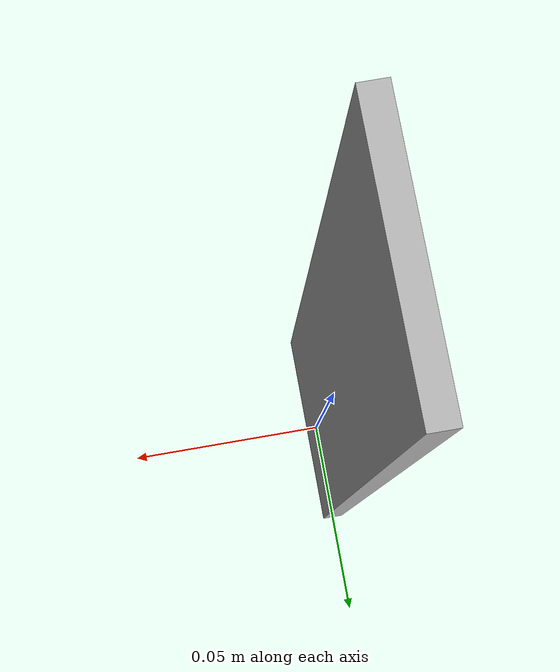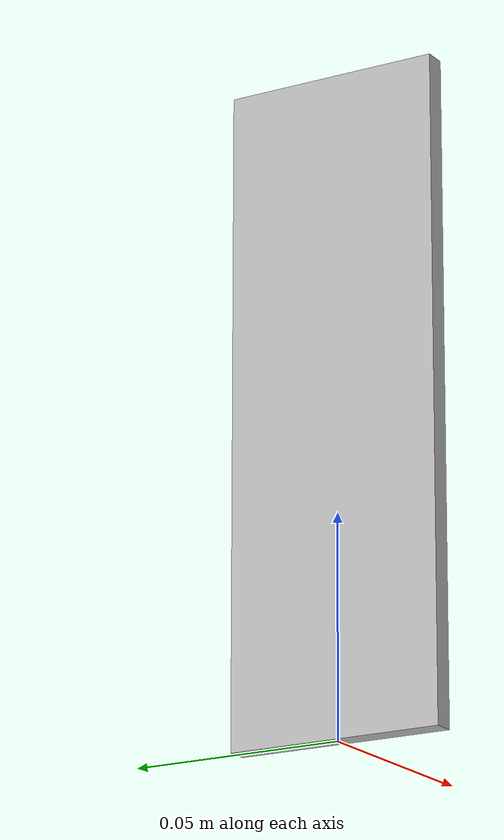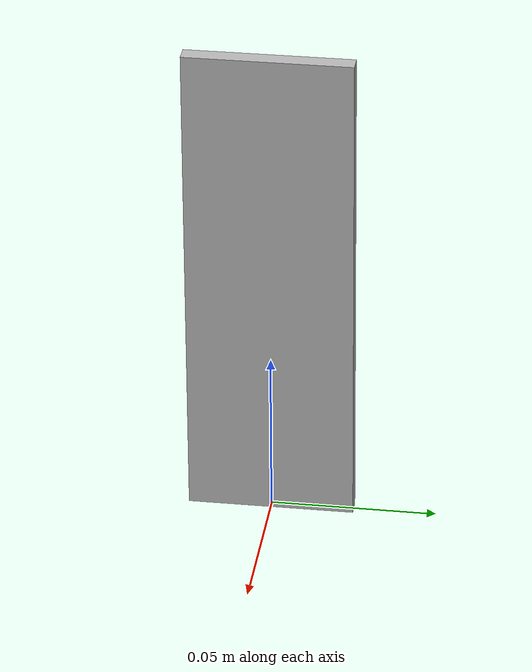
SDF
<?xml version="1.0"?>
<sdf version="1.10">
  <model name="community_person_06">
    <static>true</static>
    <link name="board">
      <collision name="collision">
        <pose>0 0 0.075 0 0 0</pose>
        <geometry><box><size>0.005 0.050 0.150</size></box></geometry>
      </collision>
      <visual name="whiteboard_person">
        <geometry><mesh><uri>model://community_person_06/meshes/board.obj</uri></mesh></geometry>
      </visual>
    </link>
  </model>
</sdf>
